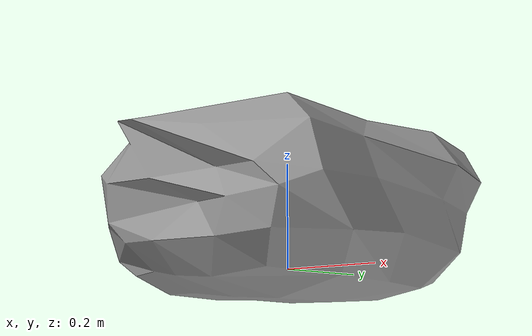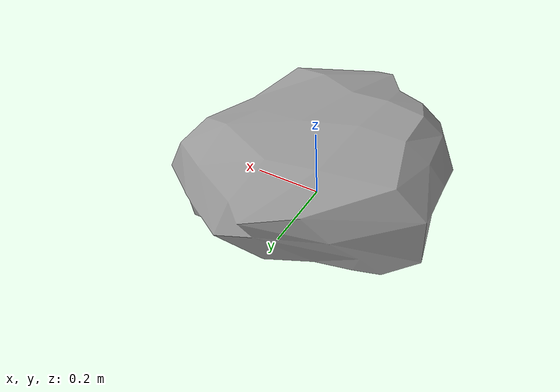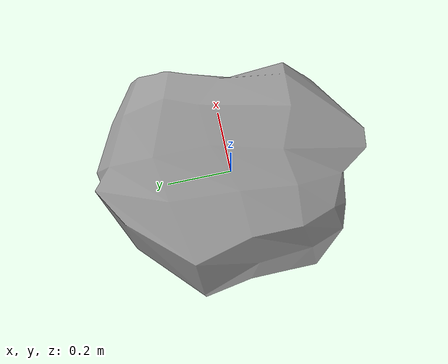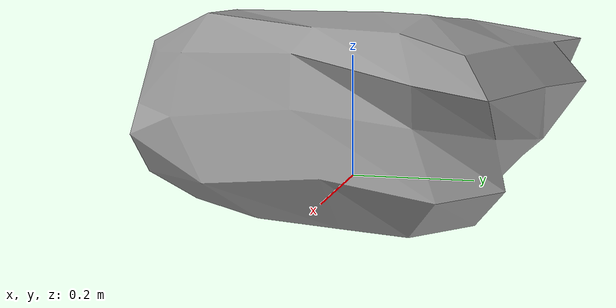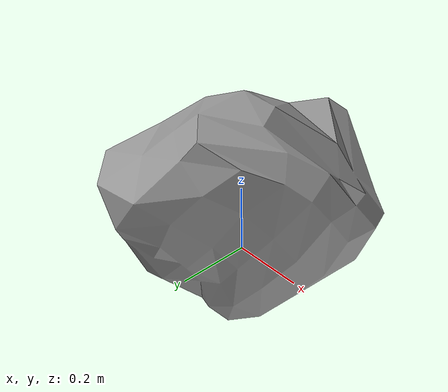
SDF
<?xml version="1.0" ?>
<sdf version="1.5">

    <model name="rock1">
      <static>true</static>
      <link name="rock">
	<visual name="body_visual">
	    <pose>0 0 0 0 0 0</pose>
	    <geometry>
	      <mesh>
		<scale>0.2 0.2 0.2</scale>
		<uri>model://rock1/meshes/rock1.stl</uri>
	      </mesh>
	    </geometry>
	    <material>
	      <script>
		<name>Gazebo/Gray</name>
		<uri>file://media/materials/scripts/gazebo.material</uri>
	      </script>
	    </material>
	  </visual>
      </link>
    </model>

</sdf>
